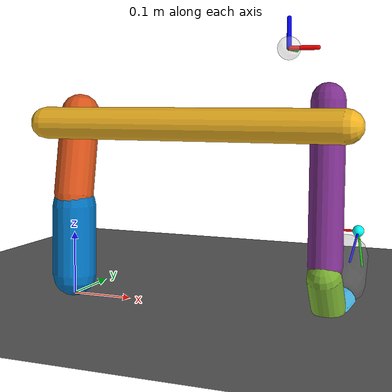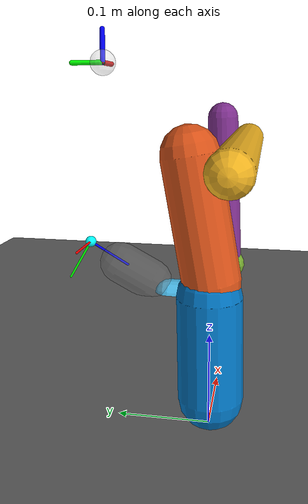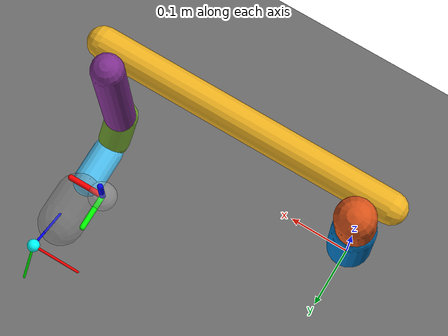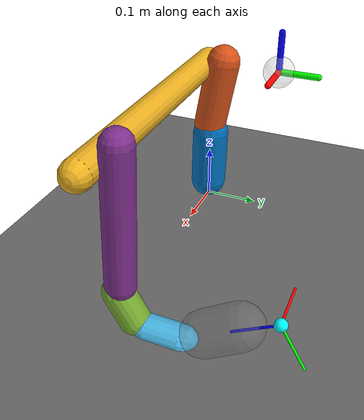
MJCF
<?xml version="1.0" ?>
<mujoco>
  <compiler coordinate='local' angle='radian' eulerseq='yxz'/>

  <asset>
    <texture builtin="checker" height="100" name="texplane1" rgb1="0 0 0" rgb2="0.8 0.8 0.8" type="2d" width="100"/>
    <material name="MatPlane" reflectance="0" shininess="1" specular="1" texrepeat="60 60" texture="texplane1"/>
  </asset>

  <contact>
    <exclude body1='b_base' body2='b_1'/>
  </contact>

  <default>
    <geom contype='1' conaffinity='1' condim='3' friction='.1 .1' solimp='.95 .98 .0005' solref='0.02 1.1' density='1'/>
    <joint type='hinge' armature='0' damping='0'
      solimpfriction='.95 .95 0' solreffriction='.02 1' solimplimit='0 .99 .01' solreflimit='.02 1'/>
  </default>

  <worldbody>
    <light cutoff="100" ambient=".2 .2 .2" diffuse=".51 .51 .51" specular=".8 .8 .8" directional="false" pos="5 -3 7" castshadow="false"/>
    <geom conaffinity="1" condim="4" name="floor" rgba="0.42 0.42 0.42 1" size="40 40 40" type="plane" material="MatPlane" friction="1 0.01 0.001"/>

    <!-- Target cursor -->
    <body name='target' pos='0.3 0.2 0.4'>
      <geom name='target_sphere' type='sphere' size='0.02' rgba='0.8 0.8 0.8 0.3' contype='0' conaffinity='0'/>
      <!-- Target orientation axes (shorter and thicker) -->
      <geom name='target_x_axis' type='capsule' size='0.004 0.025' pos='0.025 0 0' quat='0.707 0 0.707 0' rgba='1 0 0 1' contype='0' conaffinity='0'/>
      <geom name='target_y_axis' type='capsule' size='0.004 0.025' pos='0 0.025 0' quat='0.707 0.707 0 0' rgba='0 1 0 1' contype='0' conaffinity='0'/>
      <geom name='target_z_axis' type='capsule' size='0.004 0.025' pos='0 0 0.025' quat='1 0 0 0' rgba='0 0 1 1' contype='0' conaffinity='0'/>
    </body>
    <body name='b_base' pos='0 0 0.005'>
      <inertial pos='-0.000132925 -0.000516418 0.0820911' quat='0.6951 -0.00714556 0.00738537 0.71884' mass='0.00718278' diaginertia='0.00157301 0.00157269 0.00058831' />
      <geom name='base' rgba='0 0.4470 0.7410 1' type='capsule' size="0.0350512 0.0555543" pos="-0.000132925 -0.000516418 0.0820911" quat="0.6951 -0.00714564 0.00738544 0.71884" />
      <body name='b_1' pos='0 0 0.1535' quat='0 0 1 0'>
        <inertial pos='-3.49946e-005 0.010651 -0.0670012' quat='0.704277 0.0627825 -0.0628 0.70435' mass='0.00644357' diaginertia='0.00172311 0.00163259 0.00042883' />
        <joint name='joint_1' axis='0 0 -1' />
        <geom name='link_1' rgba='0.8500 0.3250 0.0980 1' type='capsule' size="0.031417 0.0668352" pos="-3.49946e-05 0.010651 -0.0670012" quat="0.704277 0.0627825 -0.0628 0.70435" />
        <body name='b_2' pos='0 0 -0.1185' quat='0 0 1 1'>
          <inertial pos='0.205004 7.5835e-005 -0.0202812' quat='2.24027e-006 0.707108 5.30493e-006 0.707106' mass='0.011691' diaginertia='0.0253426 0.0250512 0.000536357' />
          <joint name='joint_2' axis='0 0 1' range='-3.4906585 0.34906585' limited='true' />
          <geom name='link_2' rgba='0.9290 0.6940 0.1250 1' type='capsule' size="0.0251592 0.240341" pos="0.205004 7.5835e-05 -0.0202812" quat="2.23957e-06 0.707108 5.30416e-06 0.707106" />
          <body name='b_3' pos='0.41 0 0' quat='0 0.707107 0.707107 0'>
            <inertial pos='0.0843942 7.48909e-006 -0.0177123' quat='-4.64469e-005 0.692702 -4.11798e-005 0.721224' mass='0.00673417' diaginertia='0.00420255 0.00409328 0.000303584' />
            <joint name='joint_3' axis='0 0 -1' range='-4.01425728 0.872664626' limited='true' />
            <geom name='link_3' rgba='0.4940 0.1840 0.5560 1' type='capsule' size="0.0255647 0.120643" pos="0.0843942 7.48907e-06 -0.0177123" quat="-4.64475e-05 0.692702 -4.11814e-05 0.721224" />
            <body name='b_4' pos='0.207 0 -0.01125' quat='0 0.707107 0 -0.707107'>
              <inertial pos='0.0101659 -4.64261e-005 -0.0369867' quat='0.965925 1.91737e-005 -0.258823 -1.40769e-005' mass='0.00221423' diaginertia='0.0001816 0.000174586 9.79319e-005' />
              <joint name='joint_4' axis='0 0 -1' />
              <geom name='link_4' rgba='0.4660 0.6740 0.1880 1' type='capsule' size="0.0257405 0.0289568" pos="0.0101659 -4.64261e-05 -0.0369867" quat="0.965925 1.43712e-05 -0.258823 3.85082e-06" />
              <body name='b_5' pos='0.037 0 -0.06408' quat='0.866025 0 -0.5 0'>
                <inertial pos='0.0101659 -4.64261e-005 -0.0369867' quat='0.965925 1.91737e-005 -0.258823 -1.40769e-005' mass='0.00221423' diaginertia='0.0001816 0.000174586 9.79319e-005' />
                <joint name='joint_5' axis='0 0 -1' />
                <geom name='link_5' rgba='0.3010 0.7450 0.9330 1' type='capsule' size="0.0257405 0.0289568" pos="0.0101659 -4.64261e-05 -0.0369867" quat="0.965925 1.43712e-05 -0.258823 3.85082e-06" />
                <body name='b_hand' pos='0.037 0 -0.06408' quat='0.612372 -0.353553 -0.353553 0.612372'>
                  <site type='sphere' size='.01' name='gripsite' pos='0 0 -.16' rgba='0 1 1 1' />
                  <site type='sphere' size='.01' name='pinchsite' pos='0 0.015 -0.195' rgba='.5 .5 .5 0' />
                  <!-- End-effector orientation axes (longer and thinner) -->
                  <geom name='ee_x_axis' type='capsule' size='0.002 0.04' pos='0.04 0 -0.16' quat='0.707 0 0.707 0' rgba='1 0 0 1' contype='0' conaffinity='0'/>
                  <geom name='ee_y_axis' type='capsule' size='0.002 0.04' pos='0 0.04 -0.16' quat='0.707 0.707 0 0' rgba='0 1 0 1' contype='0' conaffinity='0'/>
                  <geom name='ee_z_axis' type='capsule' size='0.002 0.04' pos='0 0 -0.12' quat='1 0 0 0' rgba='0 0 1 1' contype='0' conaffinity='0'/>
                  <inertial pos='0.00628384 -2.92087e-005 -0.0608681' quat='0.708562 -0.0338601 -0.0358744 0.703923' mass='0.00547172' diaginertia='0.000759818 0.000676099 0.0004995' />
                  <joint name='joint_6' axis='0 0 -1' range='-6.28319 6.28319'  limited='false'/>
                  <geom name='link_6' rgba='0.5 0.5 0.5 0.3' type='capsule' size="0.0368731 0.0322296" pos="0.00628384 -2.92087e-05 -0.0608681" quat="0.708562 -0.0338601 -0.0358744 0.703923"/>
                </body>
              </body>
            </body>
          </body>
        </body>
      </body>
    </body>
  </worldbody>

</mujoco>
